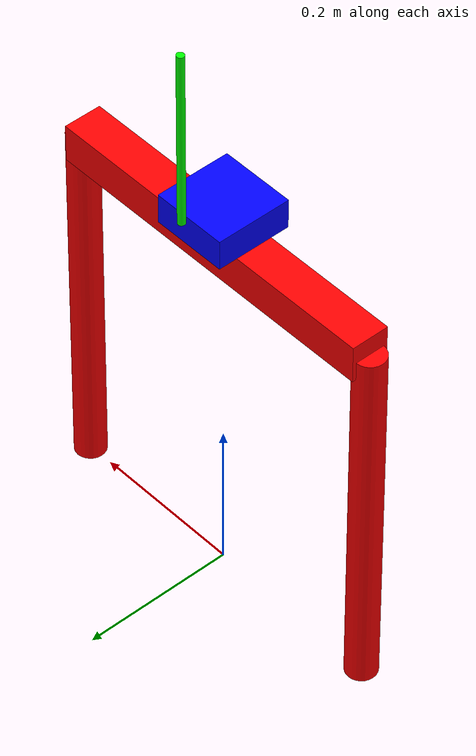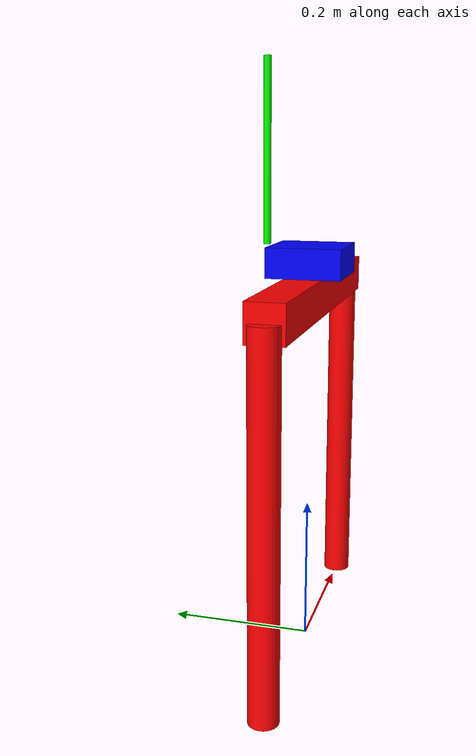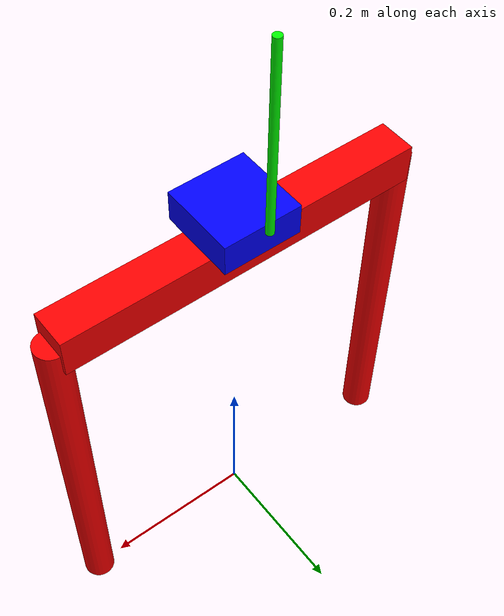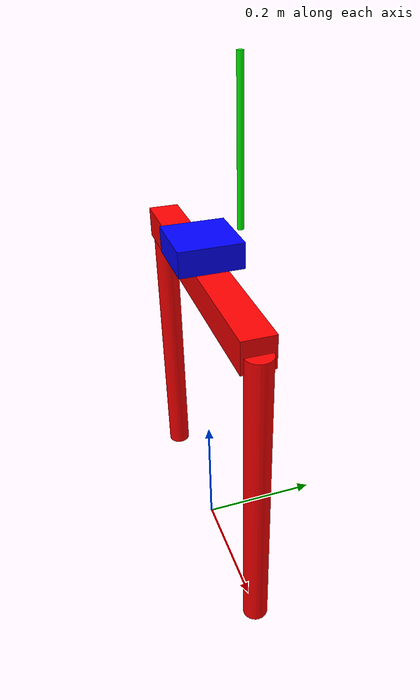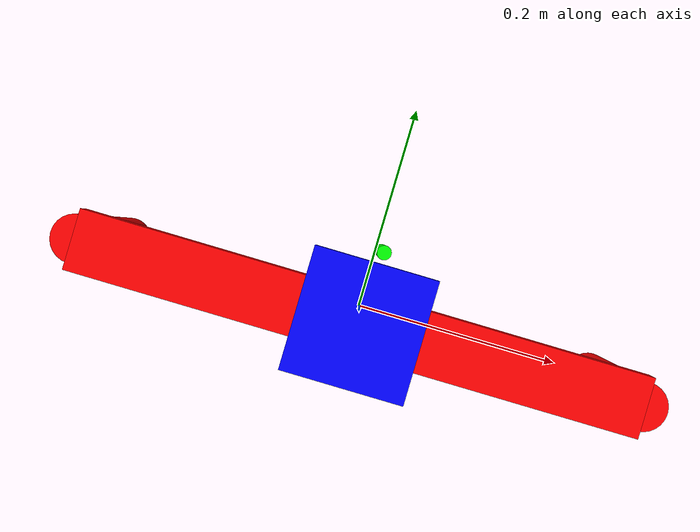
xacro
<?xml version="1.0"?>
<robot name="cart_pole" xmlns:xacro="http://ros.org/wiki/xacro">

  <xacro:property name="M_PI" value="3.14159274"/>

  <xacro:arg name="is_sim" default="true"/>

  <xacro:include filename="$(find cartpole_description)/urdf/base/base.urdf.xacro"/>
  <xacro:include filename="$(find cartpole_description)/urdf/cart/cart.urdf.xacro"/>
  <xacro:include filename="$(find cartpole_description)/urdf/pole/pole.urdf.xacro"/>
  <xacro:include filename="$(find cartpole_description)/urdf/tip/tip.urdf.xacro"/>

  <material name="red">
    <color rgba="1.0 0.0 0.0 1.0"/>
  </material>

  <material name="green">
    <color rgba="0.0 1.0 0.0 1.0"/>
  </material>

  <material name="blue">
    <color rgba="0.0 0.0 1.0 1.0"/>
  </material>

  <material name="gray">
    <color rgba="0.5 0.5 0.5 1.0"/>
  </material>

  <!-- =============== Link & Joint =============== -->
  <!-- Base -->
  <link name="world"/>
  <xacro:base_v0 parent="world">
	<origin xyz="0 0 0.5"/>
  </xacro:base_v0>

  <!-- Yaw_joint -->
  <xacro:cart_v0 parent="base_link">
	<origin xyz="0 0 0.045" rpy="0 0 0"/>
	<axis xyz="1 0 0"/>
  </xacro:cart_v0>

  <!-- Pitch_joint -->
  <xacro:pole_v0 parent="cart_link">
	<origin xyz="0 0.06 0.02" rpy="0 ${M_PI} 0"/>
	<axis xyz="0 1 0"/>
  </xacro:pole_v0>

  <xacro:tip_v0 parent="pole_link">
    <origin xyz="0 0 -0.24" rpy="0 0 0"/>
    <axis xyz="0 1 0"/>
  </xacro:tip_v0>

  <!-- =============== Control =============== -->
  <ros2_control name="RobotSystem" type="system">

    <xacro:if value="$(arg is_sim)">
      <hardware>
        <plugin>gazebo_ros2_control/GazeboSystem</plugin>
      </hardware>
    </xacro:if>

    <xacro:unless value="$(arg is_sim)">
      <hardware>
        <plugin>cartpole_controller/CartpoleHardwareInterface</plugin>
        <param name="device_path">/dev/ttyUSB0</param>
        <param name="baud_rate">115200</param>
      </hardware>
    </xacro:unless>

    <xacro:pole_control_v0/>
    <xacro:cart_control_v0/>

  </ros2_control>

  <!-- =============== Transmissions =============== -->
  <xacro:cart_trans_v0/>

  <!-- =============== Gazebo =============== -->
  <gazebo>
    <plugin filename="libgazebo_ros2_control.so" name="gazebo_ros2_control">
      <parameters>$(find cartpole_controller)/config/cartpole_controllers.yaml</parameters>
    </plugin>
  </gazebo>

  <xacro:base_gazebo_v0/>
  <xacro:cart_gazebo_v0/>
  <xacro:pole_gazebo_v0/>
  <xacro:tip_gazebo_v0/>

</robot>

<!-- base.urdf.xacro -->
<robot xmlns:xacro="http://ros.org/wiki/xacro">

  <xacro:include filename="$(find cartpole_description)/urdf/base/base.gazebo.xacro"/>

  <xacro:macro name="base_v0" params="parent *joint_origin">
	<joint name="base_link_joint" type="fixed">
	  <xacro:insert_block name="joint_origin"/>
	  <parent link="${parent}"/>
	  <child link="base_link"/>
	</joint>

    <link name="base_link">
      <visual>
        <geometry>
          <box size="0.47 0.05 0.05"/>
        </geometry>
        <origin xyz="0 0 0"/>
        <material name="red"/>
      </visual>
      <collision>
        <geometry>
          <box size="0.47 0.05 0.05"/>
        </geometry>
        <origin xyz="0 0 0"/>
      </collision>
      <inertial>
        <mass value="100"/>
        <inertia ixx="1.0" ixy="0.0" ixz="0.0" iyy="1.0" iyz="0.0" izz="1.0"/>
      </inertial>
    </link>
  </xacro:macro>

  <link name="leg1">
    <visual>
      <geometry>
        <cylinder radius="0.02" length="0.5"/>
      </geometry>
      <origin xyz="0 0 -0.25"/>
      <material name="red"/>
    </visual>
    <collision>
      <geometry>
        <cylinder radius="0.02" length="0.5"/>
      </geometry>
      <origin xyz="0 0 0"/>
    </collision>
    <inertial>
      <mass value="1"/>
      <inertia ixx="0.01" ixy="0.0" ixz="0.0" iyy="0.01" iyz="0.0" izz="0.01"/>
    </inertial>
  </link>

  <link name="leg2">
    <visual>
      <geometry>
        <cylinder radius="0.02" length="0.5"/>
      </geometry>
      <origin xyz="0 0 -0.25"/>
      <material name="red"/>
    </visual>
    <collision>
      <geometry>
        <cylinder radius="0.02" length="0.5"/>
      </geometry>
      <origin xyz="0 0 0"/>
    </collision>
    <inertial>
      <mass value="1"/>
      <inertia ixx="0.01" ixy="0.0" ixz="0.0" iyy="0.01" iyz="0.0" izz="0.01"/>
    </inertial>
  </link>

  <joint name="base_to_leg1" type="fixed">
    <origin xyz="-0.235 0.0 0.0"/>
    <parent link="base_link"/>
    <child link="leg1"/>
  </joint>

  <joint name="base_to_leg2" type="fixed">
    <origin xyz="0.235 0.0 0.0"/>
    <parent link="base_link"/>
    <child link="leg2"/>
  </joint>

</robot>

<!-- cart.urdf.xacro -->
<robot xmlns:xacro="http://ros.org/wiki/xacro">

  <xacro:include filename="$(find cartpole_description)/urdf/cart/cart.transmission.xacro"/>
  <xacro:include filename="$(find cartpole_description)/urdf/cart/cart.gazebo.xacro"/>
  <xacro:include filename="$(find cartpole_description)/urdf/cart/cart.control.xacro"/>

  <xacro:macro name="cart_v0" params="parent *joint_origin *joint_axis">
	<joint name="cart_joint" type="prismatic">
	  <xacro:insert_block name="joint_origin"/>
	  <parent link="${parent}"/>
	  <child link="cart_link"/>
          <limit effort="30" velocity="10" lower="-0.235" upper = "0.235"/>
          <dynamics damping="0.005" friction="0.1"/>
	  <xacro:insert_block name="joint_axis"/>
	</joint>

    <link name="cart_link">
      <visual>
        <geometry>
          <box size="0.1 0.1 0.04"/>
        </geometry>
        <origin xyz="0 0 0"/>
        <material name="blue"/>
      </visual>
      <collision>
        <geometry>
          <box size="0.1 0.1 0.04"/>
        </geometry>
        <origin xyz="0 0 0"/>
      </collision>
      <inertial>
        <origin xyz="0 0 0"/>
        <mass value="1"/>
        <inertia ixx="0.1" ixy="0.0" ixz="0.0" iyy="0.1" iyz="0.0" izz="0.1"/>
      </inertial>
    </link>
  </xacro:macro>

</robot>

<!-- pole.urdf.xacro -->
<robot xmlns:xacro="http://ros.org/wiki/xacro">

  <xacro:include filename="$(find cartpole_description)/urdf/pole/pole.gazebo.xacro"/>
  <xacro:include filename="$(find cartpole_description)/urdf/pole/pole.control.xacro"/>

  <xacro:macro name="pole_v0" params="parent *joint_origin *joint_axis">
	<joint name="pole_joint" type="revolute">
	  <xacro:insert_block name="joint_origin"/>
	  <parent link="${parent}"/>
	  <child link="pole_link"/>
          <limit effort="15" velocity="10" lower="-1.7" upper = "1.7"/>
          <dynamics damping="0.00001" friction="0.00001"/>
	  <xacro:insert_block name="joint_axis"/>
	</joint>

	<link name="pole_link">
      <visual>
        <geometry>
          <cylinder radius="0.005" length="0.24"/>
        </geometry>
        <origin xyz="0 0 -0.12"/>
        <material name="green"/>
      </visual>
      <collision>
        <geometry>
          <cylinder radius="0.005" length="0.24"/>
        </geometry>
        <origin xyz="0 0 -0.12"/>
      </collision>
      <inertial>
        <origin xyz="0 0 -0.12"/>
        <mass value="0.1"/>
        <inertia
              ixx="0.0005" ixy="0.0" ixz="0.0"
              iyy="0.0005" iyz="0.0"
              izz="0.00001"/>
      </inertial>
    </link>
  </xacro:macro>

</robot>

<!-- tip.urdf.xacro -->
<robot xmlns:xacro="http://ros.org/wiki/xacro">

  <xacro:include filename="$(find cartpole_description)/urdf/tip/tip.gazebo.xacro"/>

  <xacro:macro name="tip_v0" params="parent *joint_origin *joint_axis">
	<joint name="tip_joint" type="revolute">
	  <xacro:insert_block name="joint_origin"/>
	  <parent link="${parent}"/>
	  <child link="tip_link"/>
          <limit effort="30" velocity="10" lower="-1.0" upper = "1.0"/>
          <dynamics damping="0.005" friction="0.1"/>
	  <xacro:insert_block name="joint_axis"/>
	</joint>

	<link name="tip_link">
	  <inertial>
		<origin xyz="0 0 0"/>
		<mass value="0.0001"/>
		<inertia ixx="0.00000001" ixy="0" ixz="0" iyy="0.00000001" iyz="0" izz="0.00000001"/>
	  </inertial>
	</link>
  </xacro:macro>

</robot>
